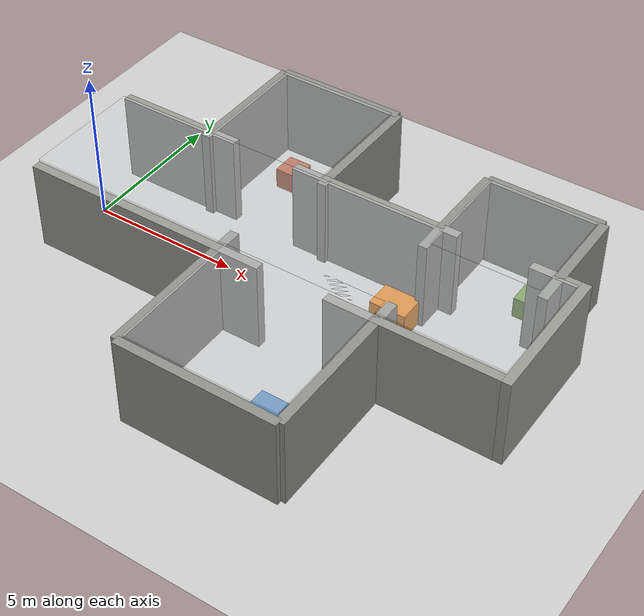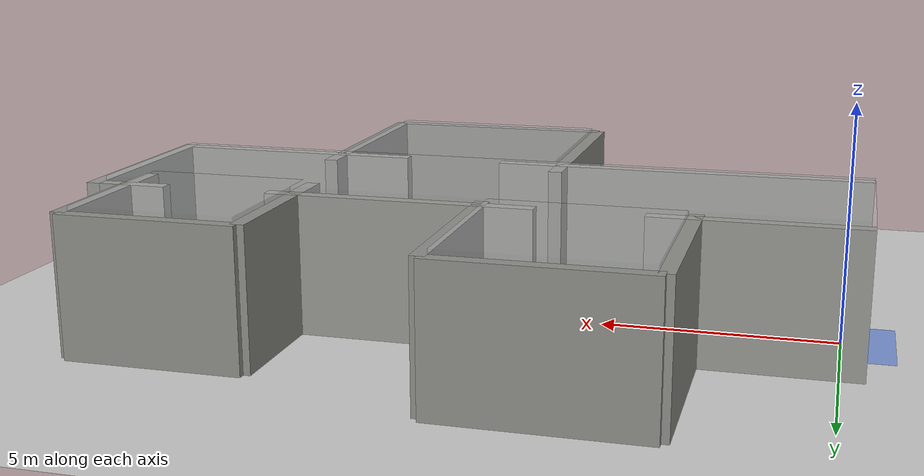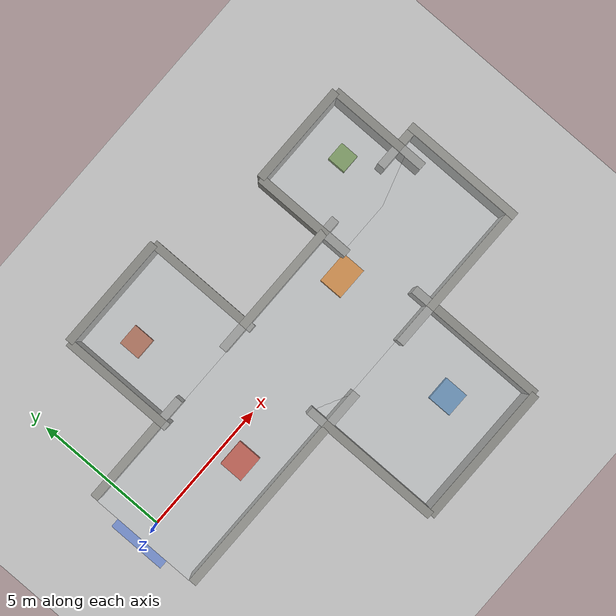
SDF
<?xml version="1.0" ?>
<sdf version="1.6">
  <world name="simple_corridor_room">
    <include>
      <uri>model://ground_plane</uri>
    </include>

    <include>
      <uri>model://sun</uri>
    </include>

    <gravity>0 0 -9.81</gravity>
    <magnetic_field>6.0e-6 2.3e-5 -4.2e-5</magnetic_field>
    <atmosphere type="adiabatic"/>

    <physics name="default_physics" type="ode">
      <max_step_size>0.004</max_step_size>
      <real_time_factor>1.0</real_time_factor>
      <real_time_update_rate>250</real_time_update_rate>
    </physics>

    <scene>
      <ambient>0.48 0.48 0.48 1</ambient>
      <background>0.70 0.78 0.86 1</background>
      <shadows>true</shadows>
    </scene>

    <gui fullscreen="0">
      <camera name="user_camera">
        <pose>7 -12 12 0 0.9 1.57</pose>
        <view_controller>orbit</view_controller>
      </camera>
    </gui>

    <!-- START / SAFE_EXIT: takeoff, return, and landing area. Visual only. -->
    <model name="start_safe_exit_marker">
      <static>true</static>
      <pose>0 0 0.012 0 0 0</pose>
      <link name="link">
        <visual name="visual">
          <geometry>
            <box>
              <size>2.2 2.2 0.02</size>
            </box>
          </geometry>
          <material>
            <ambient>0.05 0.32 0.95 0.40</ambient>
            <diffuse>0.05 0.32 0.95 0.40</diffuse>
          </material>
          <transparency>0.58</transparency>
        </visual>
      </link>
    </model>

    <!-- Main corridor: approximately x=-0.5..15.5 and y=-2..2. -->
    <model name="corridor_upper_wall_a">
      <static>true</static>
      <pose>1.65 2.15 1.5 0 0 0</pose>
      <link name="link">
        <collision name="collision"><geometry><box><size>4.3 0.3 3.0</size></box></geometry></collision>
        <visual name="visual"><geometry><box><size>4.3 0.3 3.0</size></box></geometry><material><ambient>0.60 0.60 0.58 1</ambient><diffuse>0.60 0.60 0.58 1</diffuse></material></visual>
      </link>
    </model>

    <model name="corridor_upper_wall_b">
      <static>true</static>
      <pose>8.85 2.15 1.5 0 0 0</pose>
      <link name="link">
        <collision name="collision"><geometry><box><size>5.7 0.3 3.0</size></box></geometry></collision>
        <visual name="visual"><geometry><box><size>5.7 0.3 3.0</size></box></geometry><material><ambient>0.60 0.60 0.58 1</ambient><diffuse>0.60 0.60 0.58 1</diffuse></material></visual>
      </link>
    </model>

    <model name="corridor_upper_wall_c">
      <static>true</static>
      <pose>14.75 2.15 1.5 0 0 0</pose>
      <link name="link">
        <collision name="collision"><geometry><box><size>1.5 0.3 3.0</size></box></geometry></collision>
        <visual name="visual"><geometry><box><size>1.5 0.3 3.0</size></box></geometry><material><ambient>0.60 0.60 0.58 1</ambient><diffuse>0.60 0.60 0.58 1</diffuse></material></visual>
      </link>
    </model>

    <model name="corridor_lower_wall_a">
      <static>true</static>
      <pose>3.65 -2.15 1.5 0 0 0</pose>
      <link name="link">
        <collision name="collision"><geometry><box><size>8.3 0.3 3.0</size></box></geometry></collision>
        <visual name="visual"><geometry><box><size>8.3 0.3 3.0</size></box></geometry><material><ambient>0.60 0.60 0.58 1</ambient><diffuse>0.60 0.60 0.58 1</diffuse></material></visual>
      </link>
    </model>

    <model name="corridor_lower_wall_b">
      <static>true</static>
      <pose>12.75 -2.15 1.5 0 0 0</pose>
      <link name="link">
        <collision name="collision"><geometry><box><size>5.5 0.3 3.0</size></box></geometry></collision>
        <visual name="visual"><geometry><box><size>5.5 0.3 3.0</size></box></geometry><material><ambient>0.60 0.60 0.58 1</ambient><diffuse>0.60 0.60 0.58 1</diffuse></material></visual>
      </link>
    </model>

    <model name="corridor_end_wall">
      <static>true</static>
      <pose>15.65 0 1.5 0 0 0</pose>
      <link name="link">
        <collision name="collision"><geometry><box><size>0.3 4.6 3.0</size></box></geometry></collision>
        <visual name="visual"><geometry><box><size>0.3 4.6 3.0</size></box></geometry><material><ambient>0.60 0.60 0.58 1</ambient><diffuse>0.60 0.60 0.58 1</diffuse></material></visual>
      </link>
    </model>

    <model name="corridor_ceiling">
      <static>true</static>
      <pose>7.5 0 3.05 0 0 0</pose>
      <link name="link">
        <collision name="collision"><geometry><box><size>16.0 4.0 0.1</size></box></geometry></collision>
        <visual name="visual"><geometry><box><size>16.0 4.0 0.1</size></box></geometry><material><ambient>0.82 0.84 0.86 0.30</ambient><diffuse>0.82 0.84 0.86 0.30</diffuse></material><transparency>0.70</transparency></visual>
      </link>
    </model>

    <!-- Left room centered near x=5, y=4. Door opens to the corridor. -->
    <model name="left_room_floor_marker">
      <static>true</static>
      <pose>5 4 0.013 0 0 0</pose>
      <link name="link">
        <visual name="visual"><geometry><box><size>4.0 4.0 0.02</size></box></geometry><material><ambient>0.20 0.45 0.70 0.18</ambient><diffuse>0.20 0.45 0.70 0.18</diffuse></material><transparency>0.78</transparency></visual>
      </link>
    </model>

    <model name="left_room_left_wall">
      <static>true</static>
      <pose>2.85 4 1.5 0 0 0</pose>
      <link name="link">
        <collision name="collision"><geometry><box><size>0.3 4.3 3.0</size></box></geometry></collision>
        <visual name="visual"><geometry><box><size>0.3 4.3 3.0</size></box></geometry><material><ambient>0.56 0.56 0.54 1</ambient><diffuse>0.56 0.56 0.54 1</diffuse></material></visual>
      </link>
    </model>

    <model name="left_room_right_wall">
      <static>true</static>
      <pose>7.15 4 1.5 0 0 0</pose>
      <link name="link">
        <collision name="collision"><geometry><box><size>0.3 4.3 3.0</size></box></geometry></collision>
        <visual name="visual"><geometry><box><size>0.3 4.3 3.0</size></box></geometry><material><ambient>0.56 0.56 0.54 1</ambient><diffuse>0.56 0.56 0.54 1</diffuse></material></visual>
      </link>
    </model>

    <model name="left_room_top_wall">
      <static>true</static>
      <pose>5 6.15 1.5 0 0 0</pose>
      <link name="link">
        <collision name="collision"><geometry><box><size>4.3 0.3 3.0</size></box></geometry></collision>
        <visual name="visual"><geometry><box><size>4.3 0.3 3.0</size></box></geometry><material><ambient>0.56 0.56 0.54 1</ambient><diffuse>0.56 0.56 0.54 1</diffuse></material></visual>
      </link>
    </model>

    <model name="left_room_ceiling">
      <static>true</static>
      <pose>5 4 3.05 0 0 0</pose>
      <link name="link">
        <collision name="collision"><geometry><box><size>4.0 4.0 0.1</size></box></geometry></collision>
        <visual name="visual"><geometry><box><size>4.0 4.0 0.1</size></box></geometry><material><ambient>0.82 0.84 0.86 0.30</ambient><diffuse>0.82 0.84 0.86 0.30</diffuse></material><transparency>0.70</transparency></visual>
      </link>
    </model>

    <!-- Right room centered near x=9, y=-4. This is a normal room, not a gas room. -->
    <model name="right_room_floor_marker">
      <static>true</static>
      <pose>9 -4 0.013 0 0 0</pose>
      <link name="link">
        <visual name="visual"><geometry><box><size>5.0 5.0 0.02</size></box></geometry><material><ambient>0.45 0.35 0.65 0.18</ambient><diffuse>0.45 0.35 0.65 0.18</diffuse></material><transparency>0.78</transparency></visual>
      </link>
    </model>

    <model name="right_room_left_wall">
      <static>true</static>
      <pose>6.35 -4 1.5 0 0 0</pose>
      <link name="link">
        <collision name="collision"><geometry><box><size>0.3 5.3 3.0</size></box></geometry></collision>
        <visual name="visual"><geometry><box><size>0.3 5.3 3.0</size></box></geometry><material><ambient>0.56 0.56 0.54 1</ambient><diffuse>0.56 0.56 0.54 1</diffuse></material></visual>
      </link>
    </model>

    <model name="right_room_right_wall">
      <static>true</static>
      <pose>11.65 -4 1.5 0 0 0</pose>
      <link name="link">
        <collision name="collision"><geometry><box><size>0.3 5.3 3.0</size></box></geometry></collision>
        <visual name="visual"><geometry><box><size>0.3 5.3 3.0</size></box></geometry><material><ambient>0.56 0.56 0.54 1</ambient><diffuse>0.56 0.56 0.54 1</diffuse></material></visual>
      </link>
    </model>

    <model name="right_room_bottom_wall">
      <static>true</static>
      <pose>9 -6.65 1.5 0 0 0</pose>
      <link name="link">
        <collision name="collision"><geometry><box><size>5.3 0.3 3.0</size></box></geometry></collision>
        <visual name="visual"><geometry><box><size>5.3 0.3 3.0</size></box></geometry><material><ambient>0.56 0.56 0.54 1</ambient><diffuse>0.56 0.56 0.54 1</diffuse></material></visual>
      </link>
    </model>

    <model name="right_room_ceiling">
      <static>true</static>
      <pose>9 -4 3.05 0 0 0</pose>
      <link name="link">
        <collision name="collision"><geometry><box><size>5.0 5.0 0.1</size></box></geometry></collision>
        <visual name="visual"><geometry><box><size>5.0 5.0 0.1</size></box></geometry><material><ambient>0.82 0.84 0.86 0.30</ambient><diffuse>0.82 0.84 0.86 0.30</diffuse></material><transparency>0.70</transparency></visual>
      </link>
    </model>

    <!-- Forward exploration room centered near x=13, y=3. -->
    <model name="forward_room_floor_marker">
      <static>true</static>
      <pose>13 3 0.013 0 0 0</pose>
      <link name="link">
        <visual name="visual"><geometry><box><size>3.5 3.5 0.02</size></box></geometry><material><ambient>0.55 0.50 0.25 0.18</ambient><diffuse>0.55 0.50 0.25 0.18</diffuse></material><transparency>0.78</transparency></visual>
      </link>
    </model>

    <model name="forward_room_left_wall">
      <static>true</static>
      <pose>11.10 3 1.5 0 0 0</pose>
      <link name="link">
        <collision name="collision"><geometry><box><size>0.3 3.8 3.0</size></box></geometry></collision>
        <visual name="visual"><geometry><box><size>0.3 3.8 3.0</size></box></geometry><material><ambient>0.56 0.56 0.54 1</ambient><diffuse>0.56 0.56 0.54 1</diffuse></material></visual>
      </link>
    </model>

    <model name="forward_room_right_wall">
      <static>true</static>
      <pose>14.90 3 1.5 0 0 0</pose>
      <link name="link">
        <collision name="collision"><geometry><box><size>0.3 3.8 3.0</size></box></geometry></collision>
        <visual name="visual"><geometry><box><size>0.3 3.8 3.0</size></box></geometry><material><ambient>0.56 0.56 0.54 1</ambient><diffuse>0.56 0.56 0.54 1</diffuse></material></visual>
      </link>
    </model>

    <model name="forward_room_top_wall">
      <static>true</static>
      <pose>13 4.90 1.5 0 0 0</pose>
      <link name="link">
        <collision name="collision"><geometry><box><size>3.8 0.3 3.0</size></box></geometry></collision>
        <visual name="visual"><geometry><box><size>3.8 0.3 3.0</size></box></geometry><material><ambient>0.56 0.56 0.54 1</ambient><diffuse>0.56 0.56 0.54 1</diffuse></material></visual>
      </link>
    </model>

    <model name="forward_room_ceiling">
      <static>true</static>
      <pose>13 3 3.05 0 0 0</pose>
      <link name="link">
        <collision name="collision"><geometry><box><size>3.5 3.5 0.1</size></box></geometry></collision>
        <visual name="visual"><geometry><box><size>3.5 3.5 0.1</size></box></geometry><material><ambient>0.82 0.84 0.86 0.30</ambient><diffuse>0.82 0.84 0.86 0.30</diffuse></material><transparency>0.70</transparency></visual>
      </link>
    </model>

    <!-- Obstacles with collision. They leave clear paths for simple avoidance. -->
    <model name="corridor_obstacle_1">
      <static>true</static>
      <pose>3.5 -0.75 0.45 0 0 0</pose>
      <link name="link">
        <collision name="collision"><geometry><box><size>1.0 0.9 0.9</size></box></geometry></collision>
        <visual name="visual"><geometry><box><size>1.0 0.9 0.9</size></box></geometry><material><ambient>0.78 0.24 0.16 1</ambient><diffuse>0.78 0.24 0.16 1</diffuse></material></visual>
      </link>
    </model>

    <model name="corridor_obstacle_2">
      <static>true</static>
      <pose>10.5 0.75 0.45 0 0 0</pose>
      <link name="link">
        <collision name="collision"><geometry><box><size>1.2 0.9 0.9</size></box></geometry></collision>
        <visual name="visual"><geometry><box><size>1.2 0.9 0.9</size></box></geometry><material><ambient>0.88 0.50 0.12 1</ambient><diffuse>0.88 0.50 0.12 1</diffuse></material></visual>
      </link>
    </model>

    <model name="left_room_obstacle">
      <static>true</static>
      <pose>4.25 4.55 0.35 0 0 0</pose>
      <link name="link">
        <collision name="collision"><geometry><box><size>0.8 0.8 0.7</size></box></geometry></collision>
        <visual name="visual"><geometry><box><size>0.8 0.8 0.7</size></box></geometry><material><ambient>0.70 0.35 0.22 1</ambient><diffuse>0.70 0.35 0.22 1</diffuse></material></visual>
      </link>
    </model>

    <model name="right_room_obstacle">
      <static>true</static>
      <pose>9.75 -4.65 0.35 0 0 0</pose>
      <link name="link">
        <collision name="collision"><geometry><box><size>0.9 0.9 0.7</size></box></geometry></collision>
        <visual name="visual"><geometry><box><size>0.9 0.9 0.7</size></box></geometry><material><ambient>0.30 0.52 0.72 1</ambient><diffuse>0.30 0.52 0.72 1</diffuse></material></visual>
      </link>
    </model>

    <model name="forward_room_obstacle">
      <static>true</static>
      <pose>13.55 3.35 0.35 0 0 0</pose>
      <link name="link">
        <collision name="collision"><geometry><box><size>0.7 0.7 0.7</size></box></geometry></collision>
        <visual name="visual"><geometry><box><size>0.7 0.7 0.7</size></box></geometry><material><ambient>0.42 0.58 0.26 1</ambient><diffuse>0.42 0.58 0.26 1</diffuse></material></visual>
      </link>
    </model>

    <!-- Possible gas zones are visual scenario candidates only. Active source selection is done in Python. -->
    <model name="possible_gas_zone_1">
      <static>true</static>
      <pose>5 4 0.025 0 0 0</pose>
      <link name="link">
        <visual name="visual">
          <geometry>
            <cylinder>
              <radius>0.9</radius>
              <length>0.03</length>
            </cylinder>
          </geometry>
          <material>
            <ambient>0.05 0.90 0.25 0.25</ambient>
            <diffuse>0.05 0.90 0.25 0.25</diffuse>
          </material>
          <transparency>0.70</transparency>
        </visual>
      </link>
    </model>

    <model name="possible_gas_zone_2">
      <static>true</static>
      <pose>9 -4 0.025 0 0 0</pose>
      <link name="link">
        <visual name="visual">
          <geometry>
            <cylinder>
              <radius>0.9</radius>
              <length>0.03</length>
            </cylinder>
          </geometry>
          <material>
            <ambient>0.05 0.90 0.25 0.25</ambient>
            <diffuse>0.05 0.90 0.25 0.25</diffuse>
          </material>
          <transparency>0.70</transparency>
        </visual>
      </link>
    </model>

    <model name="possible_gas_zone_3">
      <static>true</static>
      <pose>13 3 0.025 0 0 0</pose>
      <link name="link">
        <visual name="visual">
          <geometry>
            <cylinder>
              <radius>0.9</radius>
              <length>0.03</length>
            </cylinder>
          </geometry>
          <material>
            <ambient>0.05 0.90 0.25 0.25</ambient>
            <diffuse>0.05 0.90 0.25 0.25</diffuse>
          </material>
          <transparency>0.70</transparency>
        </visual>
      </link>
    </model>

    <model name="possible_gas_zone_4">
      <static>true</static>
      <pose>7 0 0.025 0 0 0</pose>
      <link name="link">
        <visual name="visual">
          <geometry>
            <cylinder>
              <radius>0.9</radius>
              <length>0.03</length>
            </cylinder>
          </geometry>
          <material>
            <ambient>0.05 0.90 0.25 0.25</ambient>
            <diffuse>0.05 0.90 0.25 0.25</diffuse>
          </material>
          <transparency>0.70</transparency>
        </visual>
      </link>
    </model>
  </world>
</sdf>
